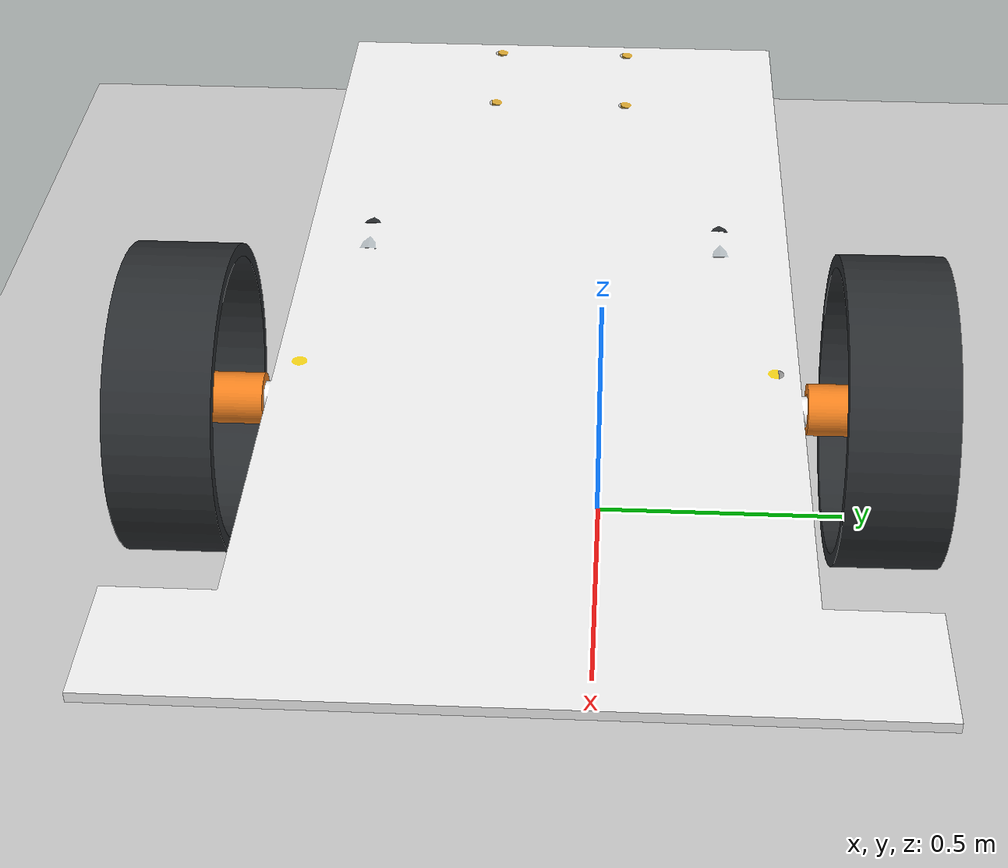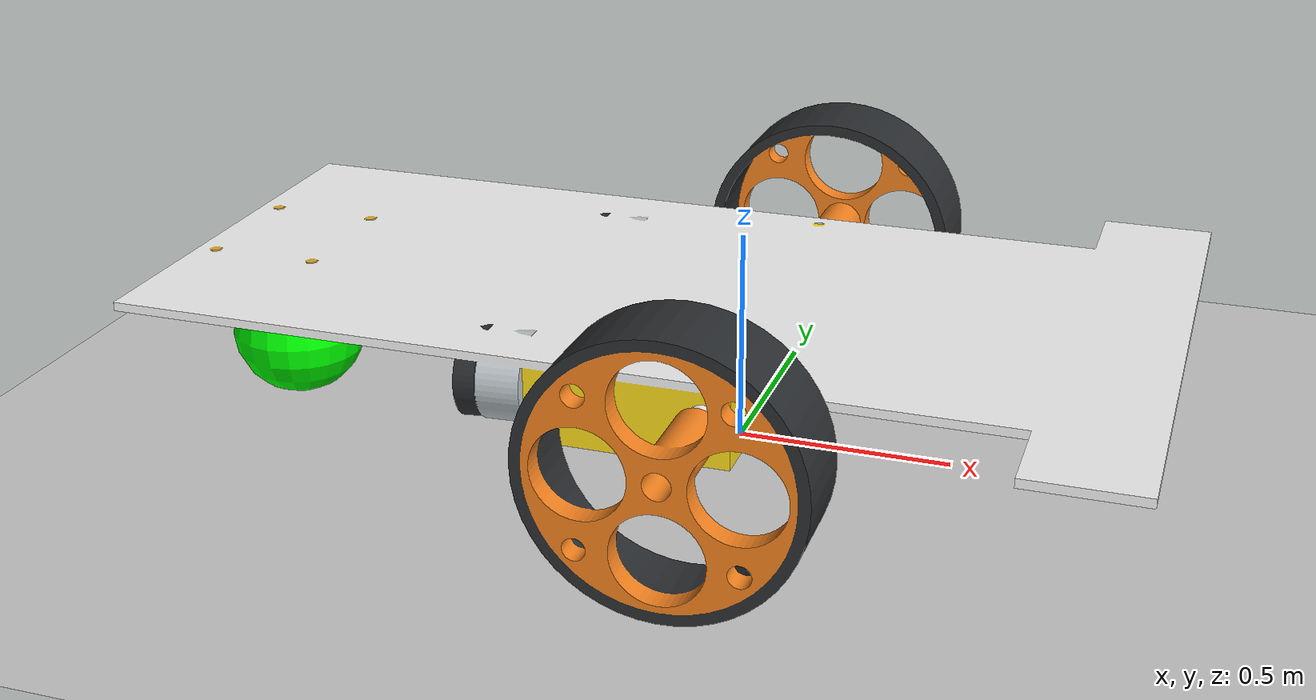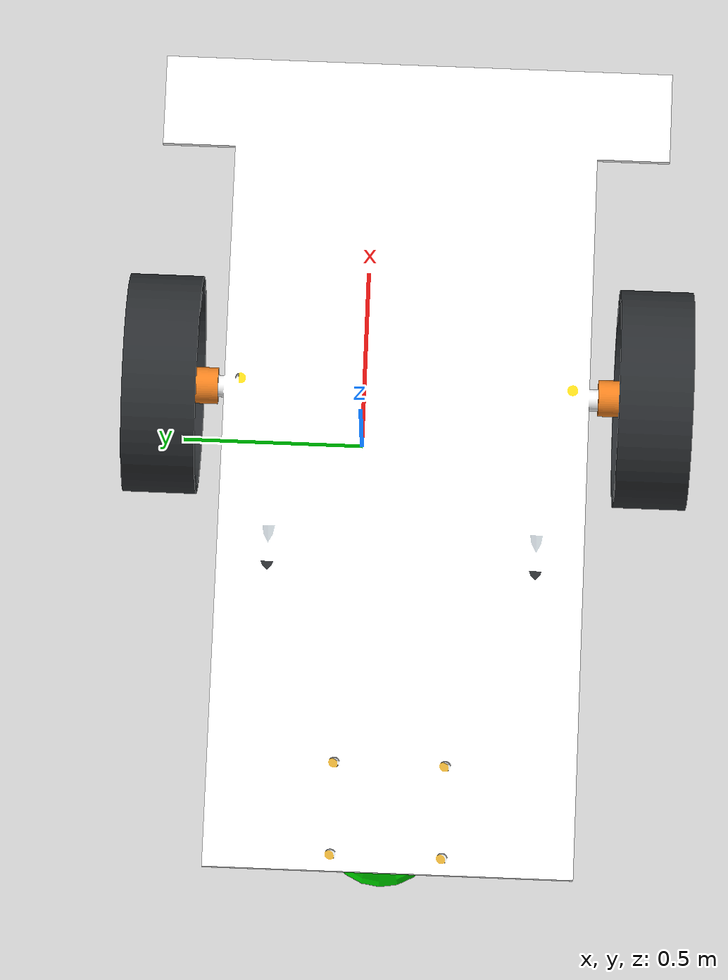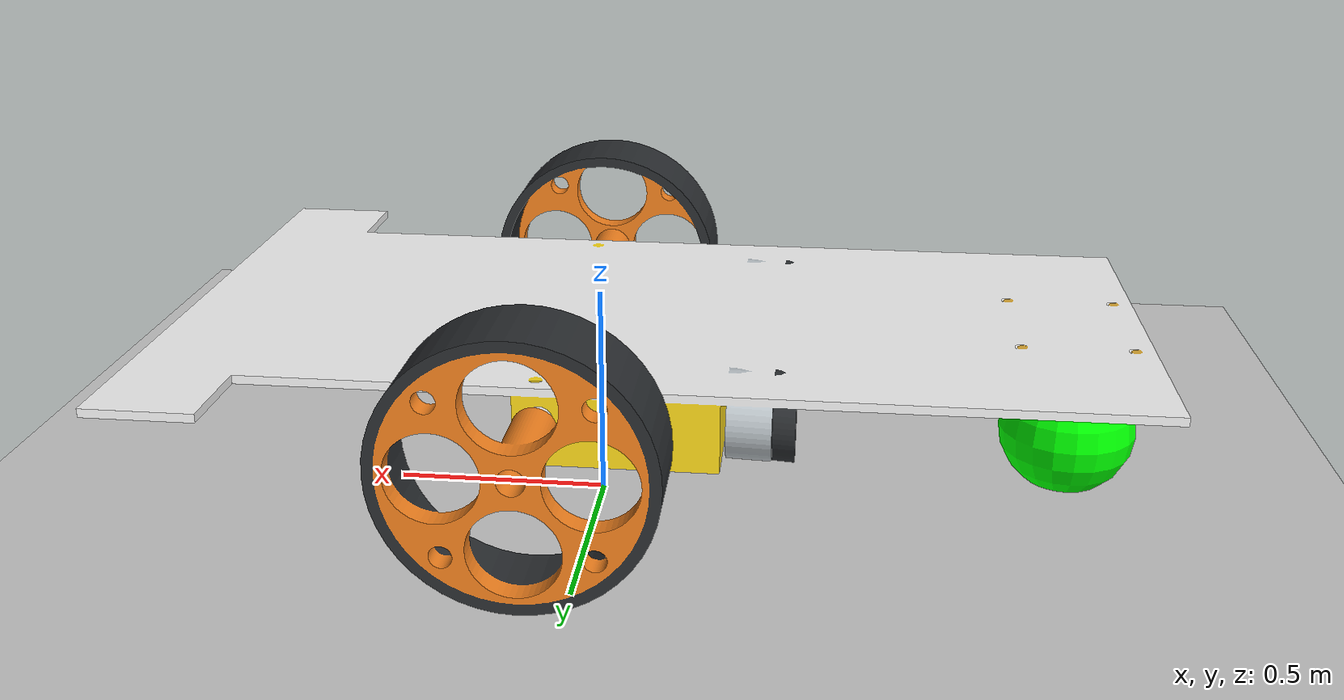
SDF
<sdf version='1.12'>
  <world name='empty'>
    <physics name='1ms' type='ignored'>
      <max_step_size>0.001</max_step_size>
      <real_time_factor>1</real_time_factor>
      <real_time_update_rate>1000</real_time_update_rate>
    </physics>
    <plugin name='gz::sim::systems::Physics' filename='gz-sim-physics-system'/>
    <plugin name='gz::sim::systems::UserCommands' filename='gz-sim-user-commands-system'/>
    <plugin name='gz::sim::systems::SceneBroadcaster' filename='gz-sim-scene-broadcaster-system'/>
    <plugin name='gz::sim::systems::Contact' filename='gz-sim-contact-system'/>
    <gravity>0 0 -9.8000000000000007</gravity>
    <magnetic_field>5.5644999999999998e-06 2.2875799999999999e-05 -4.2388400000000002e-05</magnetic_field>
    <atmosphere type='adiabatic'/>
    <scene>
      <ambient>0.400000006 0.400000006 0.400000006 1</ambient>
      <background>0.699999988 0.699999988 0.699999988 1</background>
      <shadows>true</shadows>
    </scene>
    <model name='ground_plane'>
      <static>true</static>
      <link name='link'>
        <collision name='collision'>
          <geometry>
            <plane>
              <normal>0 0 1</normal>
              <size>100 100</size>
            </plane>
          </geometry>
          <surface>
            <friction>
              <ode/>
            </friction>
            <bounce/>
            <contact/>
          </surface>
        </collision>
        <visual name='visual'>
          <geometry>
            <plane>
              <normal>0 0 1</normal>
              <size>100 100</size>
            </plane>
          </geometry>
          <material>
            <ambient>0.800000012 0.800000012 0.800000012 1</ambient>
            <diffuse>0.800000012 0.800000012 0.800000012 1</diffuse>
            <specular>0.800000012 0.800000012 0.800000012 1</specular>
          </material>
        </visual>
        <pose>0 0 0 0 0 0</pose>
        <inertial>
          <pose>0 0 0 0 0 0</pose>
          <mass>1</mass>
          <inertia>
            <ixx>1</ixx>
            <ixy>0</ixy>
            <ixz>0</ixz>
            <iyy>1</iyy>
            <iyz>0</iyz>
            <izz>1</izz>
          </inertia>
        </inertial>
        <enable_wind>false</enable_wind>
      </link>
      <pose>0 0 0 0 0 0</pose>
      <self_collide>false</self_collide>
      </model>

    <model name='rbot' canonical_link='chassis'>
    <pose relative_to='world'>0 0 0 0 0 0</pose>
        <link name='chassis'>
        <pose relative_to='__model__'>0 0 0 0 0 0</pose>

        <inertial> <!--inertial properties of the link mass, inertia matix-->
        <mass>1.14395</mass>
        <inertia>
            <ixx>0.095329</ixx>
            <ixy>0</ixy>
            <ixz>0</ixz>
            <iyy>0.381317</iyy>
            <iyz>0</iyz>
            <izz>0.476646</izz>
        </inertia>
    </inertial>
        <visual name='chasis_visual'>
          <geometry>
            <mesh>
              <uri>file:///home/as/Blender/Robot compositeLarge.dae</uri>
            </mesh>
          </geometry>
        </visual>
        <collision name='chasis_collision'>
          <geometry>
             <mesh>
              <uri>file:///home/as/Blender/Robot compositeLarge.dae</uri>
            </mesh>
          </geometry>
        </collision>
    </link>
    <link name='left_wheel'>
    <pose relative_to="chassis">0 0 0 0 0 0</pose>
    <inertial>
        <mass>1</mass>
        <inertia>
            <ixx>0.043333</ixx>
            <ixy>0</ixy>
            <ixz>0</ixz>
            <iyy>0.043333</iyy>
            <iyz>0</iyz>
            <izz>0.08</izz>
        </inertia>
    </inertial>
        <visual name='lwheel_visual'>
          <geometry>
            <mesh>
              <uri>file:///home/as/Blender/LWheelLarge.dae</uri>
            </mesh>
          </geometry>
        </visual>
        <collision name='lwheel_collision'>
          <geometry>
            <mesh>
              <uri>file:///home/as/Blender/LWheelLarge.dae</uri>
            </mesh>
          </geometry>
        </collision>
</link>
<!--The same as left wheel but with different position-->
<link name='right_wheel'>
    <pose relative_to="chassis">0 0 0 0 0 0</pose> <!--angles are in radian-->
    <inertial>
        <mass>1</mass>
        <inertia>
            <ixx>0.043333</ixx>
            <ixy>0</ixy>
            <ixz>0</ixz>
            <iyy>0.043333</iyy>
            <iyz>0</iyz>
            <izz>0.08</izz>
        </inertia>
    </inertial>
        <visual name='rwheel_visual'>
          <geometry>
            <mesh>
              <uri>file:///home/as/Blender/RWheelLarge.dae</uri>
            </mesh>
          </geometry>
        </visual>
        <collision name='rwheel_collision'>
          <geometry>
            <mesh>
              <uri>file:///home/as/Blender/RWheelLarge.dae</uri>
            </mesh>
          </geometry>
        </collision>
</link>
<frame name="caster_frame" attached_to='chassis'>
    <pose>-1.1 -0.1 0.17 0 0 0</pose>
</frame>
<!--caster wheel-->
<link name='caster'>
    <pose relative_to='caster_frame'/>
    <inertial>
        <mass>1</mass>
        <inertia>
            <ixx>0.016</ixx>
            <ixy>0</ixy>
            <ixz>0</ixz>
            <iyy>0.016</iyy>
            <iyz>0</iyz>
            <izz>0.016</izz>
        </inertia>
    </inertial>
    <visual name='visual'>
        <geometry>
            <sphere>
                <radius>0.16</radius>
            </sphere>
        </geometry>
        <material>
            <ambient>0.0 1 0.0 1</ambient>
            <diffuse>0.0 1 0.0 1</diffuse>
            <specular>0.0 1 0.0 1</specular>
        </material>
    </visual>
    <collision name='collision'>
        <geometry>
            <sphere>
                <radius>0.16</radius>
            </sphere>
        </geometry>
    </collision>
</link>
<joint name='left_wheel_joint' type='revolute'>
    <pose relative_to="left_wheel">0.09 0 0.33 0 0 0</pose>
    <parent>chassis</parent>
    <child>left_wheel</child>
        <axis>
        <xyz expressed_in='__model__'>0 1 0</xyz> <!--can be defined as any frame or even arbitrary frames-->
        <limit>
            <lower>-1.79769e+308</lower>    <!--negative infinity-->
            <upper>1.79769e+308</upper>     <!--positive infinity-->
            <effort>inf</effort>
            <velocity>inf</velocity>
        </limit>
          <dynamics>
            <spring_reference>0</spring_reference>
            <spring_stiffness>1000</spring_stiffness>
            <damping>1000</damping>
            <friction>0</friction>
          </dynamics>

    </axis>
</joint>
<joint name='right_wheel_joint' type='revolute'>
    <pose relative_to="right_wheel">0.09 0 0.33 0 0 0</pose>
    <parent>chassis</parent>
    <child>right_wheel</child>
    <axis>
        <xyz expressed_in='__model__'>0 1 0</xyz>
        <limit>
            <lower>-1.79769e+308</lower>    <!--negative infinity-->
            <upper>1.79769e+308</upper>     <!--positive infinity-->
            <effort>inf</effort>
            <velocity>inf</velocity>
        </limit>
    </axis>
</joint>
<joint name='caster_wheel' type='ball'>
    <parent>chassis</parent>
    <child>caster</child>
</joint>

      <plugin name='gz::sim::systems::DiffDrive' filename='gz-sim-diff-drive-system'>
        <left_joint>left_wheel_joint</left_joint>
        <right_joint>right_wheel_joint</right_joint>
        <wheel_separation>1.25</wheel_separation>
        <wheel_radius>0.3</wheel_radius>
        <odom_publish_frequency>1</odom_publish_frequency>
      </plugin>
      <static>false</static>
      <self_collide>false</self_collide>

</model>

    <light name='sun' type='directional'>
      <pose>0 0 10 0 0 0</pose>
      <cast_shadows>true</cast_shadows>
      <intensity>1</intensity>
      <direction>-0.5 0.10000000000000001 -0.90000000000000002</direction>
      <diffuse>0.800000012 0.800000012 0.800000012 1</diffuse>
      <specular>0.200000003 0.200000003 0.200000003 1</specular>
      <attenuation>
        <range>1000</range>
        <linear>0.0099999997764825821</linear>
        <constant>0.89999997615814209</constant>
        <quadratic>0.0010000000474974513</quadratic>
      </attenuation>
      <spot>
        <inner_angle>0</inner_angle>
        <outer_angle>0</outer_angle>
        <falloff>0</falloff>
      </spot>
    </light>
  </world>
  <gazebo>
  <plugin name="gazebo_ros_control" filename="libgazebo_ros_control.so">
    <robotNamespace>/rbot</robotNamespace>
  </plugin>
</gazebo>
</sdf>
